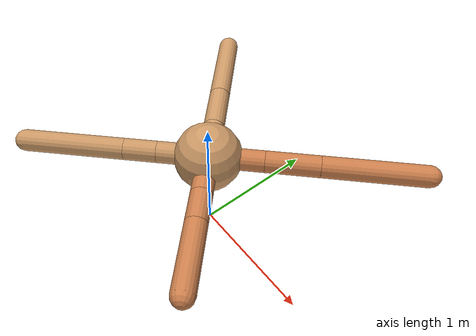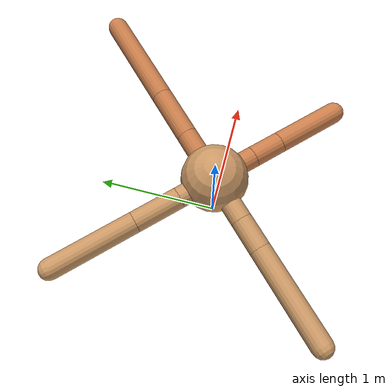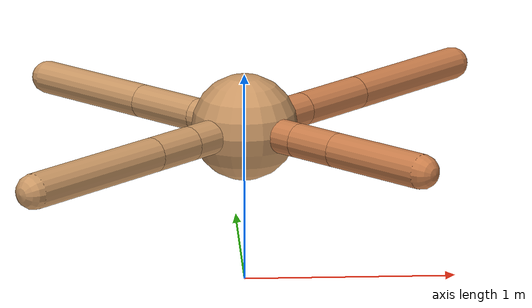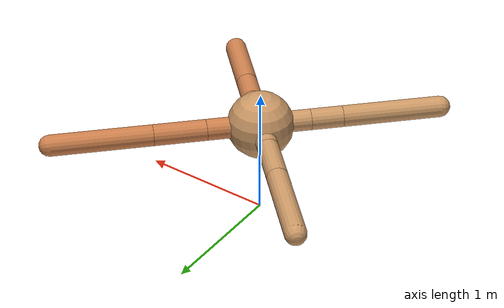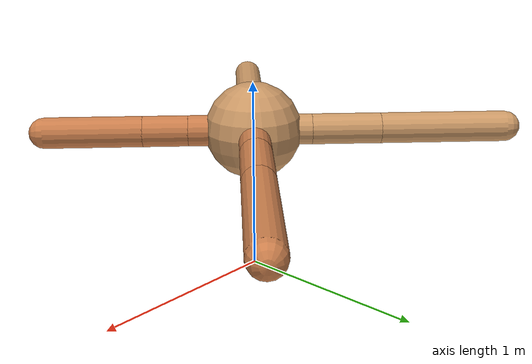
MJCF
<mujoco model="ant">
  <compiler angle="degree" coordinate="local" inertiafromgeom="true" />
  <option integrator="RK4" timestep="0.01" />
  <custom>
    <numeric data="0.0 0.0 0.55 1.0 0.0 0.0 0.0 0.0 1.0 0.0 -1.0 0.0 -1.0 0.0 1.0" name="init_qpos" />
  </custom>
  <default>
    <joint armature="1" damping="1" limited="true" />
    <geom conaffinity="0" condim="3" density="5.0" friction="1.5 0.1 0.1" margin="0.01" rgba="0.8 0.6 0.4 1" />
  </default>
  <worldbody>
    <body name="torso" pos="0 0 0.75">
      <geom name="torso_geom" pos="0 0 0" size="0.25" type="sphere" />

      <body name="front_left_leg" pos="0 0 0">
        <geom fromto="0.0 0.0 0.0 0.2854789844681165 0.2854789844681165 0.0" name="aux_1_geom" size="0.08" type="capsule" rgba=".8 .5 .3 1" />
        <body name="aux_1" pos="0.2854789844681165 0.2854789844681165 0.0">
          <joint axis="0 0 1" name="hip_1" pos="0.0 0.0 0.0" range="-40 40" type="hinge" />
          <geom fromto="0.0 0.0 0.0 0.2777550963798962 0.2777550963798962 0.0" name="left_leg_geom" size="0.08" type="capsule" rgba=".8 .5 .3 1" />
          <body pos="0.2777550963798962 0.2777550963798962 0.0" name="front_left_foot">
            <joint axis="-1 1 0" name="ankle_1" pos="0.0 0.0 0.0" range="30 100" type="hinge" />
            <geom fromto="0.0 0.0 0.0 0.5324869919976608 0.5324869919976608 0.0" name="left_ankle_geom" size="0.08" type="capsule" rgba=".8 .5 .3 1" />
          </body>
        </body>
      </body>
      <body name="front_right_leg" pos="0 0 0">
        <geom fromto="0.0 0.0 0.0 -0.21335352662871712 0.21335352662871712 0.0" name="aux_2_geom" size="0.08" type="capsule" />
        <body name="aux_2" pos="-0.21335352662871712 0.21335352662871712 0.0">
          <joint axis="0 0 1" name="hip_2" pos="0.0 0.0 0.0" range="-40 40" type="hinge" />
          <geom fromto="0.0 0.0 0.0 -0.2532001781904474 0.2532001781904474 0.0" name="right_leg_geom" size="0.08" type="capsule" />
          <body pos="-0.2532001781904474 0.2532001781904474 0.0" name="front_right_foot">
            <joint axis="1 1 0" name="ankle_2" pos="0.0 0.0 0.0" range="-100 -30" type="hinge" />
            <geom fromto="0.0 0.0 0.0 -0.4642247356688321 0.4642247356688321 0.0" name="right_ankle_geom" size="0.08" type="capsule" />
          </body>
        </body>
      </body>
      <body name="left_back_leg" pos="0 0 0">
        <geom fromto="0.0 0.0 0.0 -0.2636409282775844 -0.2636409282775844 0.0" name="aux_3_geom" size="0.08" type="capsule" />
        <body name="aux_3" pos="-0.2636409282775844 -0.2636409282775844 0.0">
          <joint axis="0 0 1" name="hip_3" pos="0.0 0.0 0.0" range="-40 40" type="hinge" />
          <geom fromto="0.0 0.0 0.0 -0.1701612438907298 -0.1701612438907298 0.0" name="back_leg_geom" size="0.08" type="capsule" />
          <body pos="-0.1701612438907298 -0.1701612438907298 0.0" name="left_back_foot">
            <joint axis="-1 1 0" name="ankle_3" pos="0.0 0.0 0.0" range="-100 -30" type="hinge" />
            <geom fromto="0.0 0.0 0.0 -0.5255818542857572 -0.5255818542857572 0.0" name="third_ankle_geom" size="0.08" type="capsule" />
          </body>
        </body>
      </body>
      <body name="right_back_leg" pos="0 0 0">
        <geom fromto="0.0 0.0 0.0 0.23727189225208112 -0.23727189225208112 0.0" name="aux_4_geom" size="0.08" type="capsule" rgba=".8 .5 .3 1" />
        <body name="aux_4" pos="0.23727189225208112 -0.23727189225208112 0.0">
          <joint axis="0 0 1" name="hip_4" pos="0.0 0.0 0.0" range="-40 40" type="hinge" />
          <geom fromto="0.0 0.0 0.0 0.16404480941968505 -0.16404480941968505 0.0" name="rightback_leg_geom" size="0.08" type="capsule" rgba=".8 .5 .3 1" />
          <body pos="0.16404480941968505 -0.16404480941968505 0.0" name="right_back_foot">
            <joint axis="1 1 0" name="ankle_4" pos="0.0 0.0 0.0" range="30 100" type="hinge" />
            <geom fromto="0.0 0.0 0.0 0.35208600748809965 -0.35208600748809965 0.0" name="fourth_ankle_geom" size="0.08" type="capsule" rgba=".8 .5 .3 1" />
          </body>
        </body>
      </body>
    </body>
  </worldbody>
  <actuator>
    <motor ctrllimited="true" ctrlrange="-1.0 1.0" joint="hip_4" gear="150" />
    <motor ctrllimited="true" ctrlrange="-1.0 1.0" joint="ankle_4" gear="150" />
    <motor ctrllimited="true" ctrlrange="-1.0 1.0" joint="hip_1" gear="150" />
    <motor ctrllimited="true" ctrlrange="-1.0 1.0" joint="ankle_1" gear="150" />
    <motor ctrllimited="true" ctrlrange="-1.0 1.0" joint="hip_2" gear="150" />
    <motor ctrllimited="true" ctrlrange="-1.0 1.0" joint="ankle_2" gear="150" />
    <motor ctrllimited="true" ctrlrange="-1.0 1.0" joint="hip_3" gear="150" />
    <motor ctrllimited="true" ctrlrange="-1.0 1.0" joint="ankle_3" gear="150" />
  </actuator>
</mujoco>
